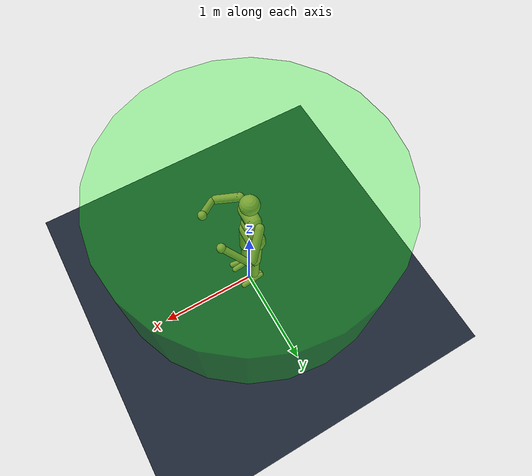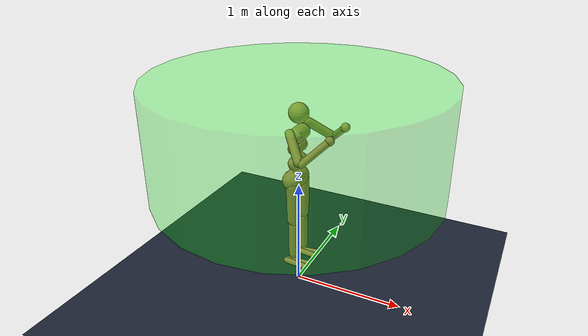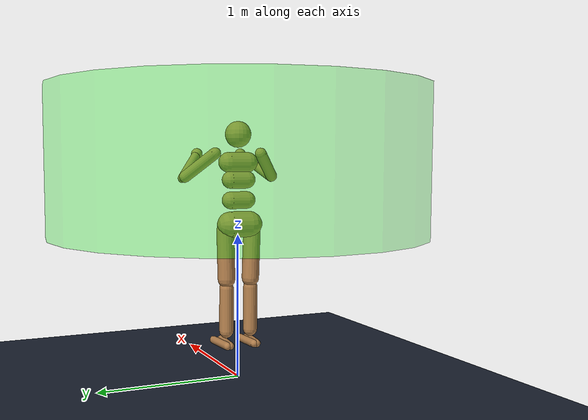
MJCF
<mujoco model="humanoid">
    <asset>
        <texture name="grid" type="2d" builtin="checker" rgb1=".08 .11 .16" rgb2=".15 .18 .25" width="300" height="300"/>
        <material name="grid" texture="grid" texrepeat="1 1" texuniform="true"/>
        <material name="self" rgba=".7 .5 .3 1"/>
        <material name="self_default" rgba=".7 .5 .3 1"/>
        <material name="self_highlight" rgba="0 .5 .3 1"/>
        <material name="self_white" rgba=".8 .8 .8 1"/>
        <material name="effector" rgba=".7 .4 .2 1"/>
        <material name="effector_default" rgba=".7 .4 .2 1"/>
        <material name="effector_highlight" rgba="0 .5 .3 1"/>
        <material name="decoration" rgba=".3 .5 .7 1"/>
        <material name="eye" rgba="0 .2 1 1"/>
        <material name="target" rgba="0.96 0.26 0.33 1"/>
        <material name="subgoal_waypnt" rgba="1.0 0.35 0.11 1"/>
        <material name="site" rgba=".5 .5 .5 .3"/>
        <material name="wall" rgba="1 1 1 1"/>

        <material name="matte_material"
          rgba="1.0 0.35 0.11 1"
          specular="0.0"
          shininess="0.0"
          reflectance="0.0"
          emission="0.0" />    <!-- Feb 24, usually 0 unless you want the geom to glow -->

    </asset>

    <option timestep=".005"/>

    <default>
        <motor ctrlrange="-1 1" ctrllimited="true"/>
        <default class="body">
            <geom type="capsule" condim="1" friction=".7" solimp=".9 .99 .003" solref=".015 1" material="self"/>
            <joint type="hinge" damping=".2" stiffness="1" armature=".01" limited="true" solimplimit="0 .99 .01"/>
            <default class="big_joint">
                <joint damping="5" stiffness="10"/>
                <default class="big_stiff_joint">
                    <joint stiffness="20"/>
                </default>
            </default>
            <site size=".04" group="3"/>
            <default class="force-torque">
                <site type="box" size=".01 .01 .02" rgba="1 0 0 1"/>
            </default>
            <default class="touch">
                <site type="capsule" rgba="0 0 1 .3"/>
            </default>
        </default>
    </default>

    <worldbody>
        <light name="global" directional="true" cutoff="100" exponent="1" ambient=".2 .2 .2" diffuse="1 1 1" specular=".1 .1 .1" pos="0 0 1.3" dir="-0 0 -1.3"/>
        <geom name="floor" type="plane" conaffinity="1" size="100 100 .2" material="grid"/>
        <body name="torso" pos="0 0 1.5" childclass="body">
        <!-- Jan 1 Added for visualization -->
            <!-- size="2.0 1.0" -->
            <!-- rgba="0 1 0 0.4" -->
            <!-- pos="0 0 1" -->
            <geom
            name="visual_circle"
            type="cylinder"
            size="1.3 0.5"
            pos="0 0 0."
            rgba="0 1 0 0.3"
            contype="0"
            conaffinity="0"
            density="0"/>

            <camera name="back" pos="0 -0.6 1.25" xyaxes="1 0 0 0 2.5 1" mode="trackcom"/>
            <camera name="back_luo_v1" pos="0 -2.4 5" xyaxes="1 0 0 0 2 1" mode="trackcom"/>
            <camera name="back_luo_v2" pos="0 -3.6 7.5" xyaxes="1 0 0 0 2 1" mode="trackcom"/>
            <camera name="back_luo_v3" pos="0 -4.8 10" xyaxes="1 0 0 0 2 1" mode="trackcom"/>

            <freejoint name="root"/>
            <site name="root" class="force-torque"/>
            <geom name="torso" fromto="0 -.07 0 0 .07 0" size=".07"/>
            <light name="torso_light" pos="0 0 8" mode="trackcom"/>
            <geom name="upper_waist" fromto="-.01 -.06 -.12 -.01 .06 -.12" size=".06"/>
            <site name="torso" class="touch" type="box" pos="0 0 -.05" size=".075 .14 .13"/>
            <body name="head" pos="0 0 .19">
                <geom name="head" type="sphere" size=".09"/>
                <site name="head" class="touch" type="sphere" size=".091"/>
                <camera name="egocentric" pos=".09 0 0" xyaxes="0 -1 0 .1 0 1" fovy="80"/>
            </body>
            <body name="lower_waist" pos="-.01 0 -.260" quat="1.000 0 -.002 0">
                <geom name="lower_waist" fromto="0 -.06 0 0 .06 0" size=".06"/>
                <site name="lower_waist" class="touch" size=".061 .06" zaxis="0 1 0"/>
                <joint name="abdomen_z" pos="0 0 .065" axis="0 0 1" range="-45 45" class="big_stiff_joint"/>
                <joint name="abdomen_y" pos="0 0 .065" axis="0 1 0" range="-75 30" class="big_joint"/>
                <body name="pelvis" pos="0 0 -.165" quat="1.000 0 -.002 0">
                    <joint name="abdomen_x" pos="0 0 .1" axis="1 0 0" range="-35 35" class="big_joint"/>
                    <geom name="butt" fromto="-.02 -.07 0 -.02 .07 0" size=".09"/>
                    <site name="butt" class="touch" size=".091 .07" pos="-.02 0 0" zaxis="0 1 0"/>
                    <body name="right_thigh" pos="0 -.1 -.04">
                        <site name="right_hip" class="force-torque"/>
                        <joint name="right_hip_x" axis="1 0 0" range="-25 5" class="big_joint"/>
                        <joint name="right_hip_z" axis="0 0 1" range="-60 35" class="big_joint"/>
                        <joint name="right_hip_y" axis="0 1 0" range="-110 20" class="big_stiff_joint"/>
                        <geom name="right_thigh" fromto="0 0 0 0 .01 -.34" size=".06"/>
                        <site name="right_thigh" class="touch" pos="0 .005 -.17" size=".061 .17" zaxis="0 -1 34"/>
                        <body name="right_shin" pos="0 .01 -.403">
                            <site name="right_knee" class="force-torque" pos="0 0 .02"/>
                            <joint name="right_knee" pos="0 0 .02" axis="0 -1 0" range="-160 2"/>
                            <geom name="right_shin" fromto="0 0 0 0 0 -.3" size=".049"/>
                            <site name="right_shin" class="touch" pos="0 0 -.15" size=".05 .15"/>
                            <body name="right_foot" pos="0 0 -.39">
                                <site name="right_ankle" class="force-torque"/>
                                <joint name="right_ankle_y" pos="0 0 .08" axis="0 1 0" range="-50 50" stiffness="6"/>
                                <joint name="right_ankle_x" pos="0 0 .04" axis="1 0 .5" range="-50 50" stiffness="3"/>
                                <geom name="right_right_foot" fromto="-.07 -.02 0 .14 -.04 0" size=".027"/>
                                <geom name="left_right_foot" fromto="-.07 0 0 .14  .02 0" size=".027"/>
                                <site name="right_right_foot" class="touch" pos=".035 -.03 0" size=".03 .11" zaxis="21 -2 0"/>
                                <site name="left_right_foot" class="touch" pos=".035 .01 0" size=".03 .11" zaxis="21 2 0"/>
                            </body>
                        </body>
                    </body>
                    <body name="left_thigh" pos="0 .1 -.04">
                        <site name="left_hip" class="force-torque"/>
                        <joint name="left_hip_x" axis="-1 0 0" range="-25 5" class="big_joint"/>
                        <joint name="left_hip_z" axis="0 0 -1" range="-60 35" class="big_joint"/>
                        <joint name="left_hip_y" axis="0 1 0" range="-120 20" class="big_stiff_joint"/>
                        <geom name="left_thigh" fromto="0 0 0 0 -.01 -.34" size=".06"/>
                        <site name="left_thigh" class="touch" pos="0 -.005 -.17" size=".061 .17" zaxis="0 1 34"/>
                        <body name="left_shin" pos="0 -.01 -.403">
                            <site name="left_knee" class="force-torque" pos="0 0 .02"/>
                            <joint name="left_knee" pos="0 0 .02" axis="0 -1 0" range="-160 2"/>
                            <geom name="left_shin" fromto="0 0 0 0 0 -.3" size=".049"/>
                            <site name="left_shin" class="touch" pos="0 0 -.15" size=".05 .15"/>
                            <body name="left_foot" pos="0 0 -.39">
                                <site name="left_ankle" class="force-torque"/>
                                <joint name="left_ankle_y" pos="0 0 .08" axis="0 1 0" range="-50 50" stiffness="6"/>
                                <joint name="left_ankle_x" pos="0 0 .04" axis="1 0 .5" range="-50 50" stiffness="3"/>
                                <geom name="left_left_foot" fromto="-.07 .02 0 .14 .04 0" size=".027"/>
                                <geom name="right_left_foot" fromto="-.07 0 0 .14  -.02 0" size=".027"/>
                                <site name="right_left_foot" class="touch" pos=".035 -.01 0" size=".03 .11" zaxis="21 -2 0"/>
                                <site name="left_left_foot" class="touch" pos=".035 .03 0" size=".03 .11" zaxis="21 2 0"/>

                            </body>
                        </body>
                    </body>
                </body>
            </body>
            <body name="right_upper_arm" pos="0 -.17 .06">
                <joint name="right_shoulder1" axis="2 1 1" range="-85 60"/>
                <joint name="right_shoulder2" axis="0 -1 1" range="-85 60"/>
                <geom name="right_upper_arm" fromto="0 0 0 .16 -.16 -.16" size=".04 .16"/>
                <site name="right_upper_arm" class="touch" pos=".08 -.08 -.08" size=".041 .14" zaxis="1 -1 -1"/>
                <body name="right_lower_arm" pos=".18 -.18 -.18">
                    <joint name="right_elbow" axis="0 -1 1" range="-90 50" stiffness="0"/>
                    <geom name="right_lower_arm" fromto=".01 .01 .01 .17 .17 .17" size=".031"/>
                    <site name="right_lower_arm" class="touch" pos=".09 .09 .09" size=".032 .14" zaxis="1 1 1"/>
                    <body name="right_hand" pos=".18 .18 .18">
                        <geom name="right_hand" type="sphere" size=".04"/>
                        <site name="right_hand" class="touch" type="sphere" size=".041"/>
                    </body>
                </body>
            </body>
            <body name="left_upper_arm" pos="0 .17 .06">
                <joint name="left_shoulder1" axis="2 -1 1" range="-60 85"/>
                <joint name="left_shoulder2" axis="0 1 1" range="-60 85"/>
                <geom name="left_upper_arm" fromto="0 0 0 .16 .16 -.16" size=".04 .16"/>
                <site name="left_upper_arm" class="touch" pos=".08 .08 -.08" size=".041 .14" zaxis="1 1 -1"/>
                <body name="left_lower_arm" pos=".18 .18 -.18">
                    <joint name="left_elbow" axis="0 -1 -1" range="-90 50" stiffness="0"/>
                    <geom name="left_lower_arm" fromto=".01 -.01 .01 .17 -.17 .17" size=".031"/>
                    <site name="left_lower_arm" class="touch" pos=".09 -.09 .09" size=".032 .14" zaxis="1 -1 1"/>
                    <body name="left_hand" pos=".18 -.18 .18">
                        <geom name="left_hand" type="sphere" size=".04"/>
                        <site name="left_hand" class="touch" type="sphere" size=".041"/>
                    </body>
                </body>
            </body>
        </body>
    </worldbody>

    <actuator>
        <motor name="abdomen_y" gear="40" joint="abdomen_y"/>
        <motor name="abdomen_z" gear="40" joint="abdomen_z"/>
        <motor name="abdomen_x" gear="40" joint="abdomen_x"/>
        <motor name="right_hip_x" gear="40" joint="right_hip_x"/>
        <motor name="right_hip_z" gear="40" joint="right_hip_z"/>
        <motor name="right_hip_y" gear="120" joint="right_hip_y"/>
        <motor name="right_knee" gear="80" joint="right_knee"/>
        <motor name="right_ankle_x" gear="20" joint="right_ankle_x"/>
        <motor name="right_ankle_y" gear="20" joint="right_ankle_y"/>
        <motor name="left_hip_x" gear="40" joint="left_hip_x"/>
        <motor name="left_hip_z" gear="40" joint="left_hip_z"/>
        <motor name="left_hip_y" gear="120" joint="left_hip_y"/>
        <motor name="left_knee" gear="80" joint="left_knee"/>
        <motor name="left_ankle_x" gear="20" joint="left_ankle_x"/>
        <motor name="left_ankle_y" gear="20" joint="left_ankle_y"/>
        <motor name="right_shoulder1" gear="20" joint="right_shoulder1"/>
        <motor name="right_shoulder2" gear="20" joint="right_shoulder2"/>
        <motor name="right_elbow" gear="40" joint="right_elbow"/>
        <motor name="left_shoulder1" gear="20" joint="left_shoulder1"/>
        <motor name="left_shoulder2" gear="20" joint="left_shoulder2"/>
        <motor name="left_elbow" gear="40" joint="left_elbow"/>
    </actuator>

    <sensor>
        <subtreelinvel name="torso_subtreelinvel" body="torso"/>
        <accelerometer name="torso_accel" site="root"/>
        <velocimeter name="torso_vel" site="root"/>
        <gyro name="torso_gyro" site="root"/>

        <force name="left_ankle_force" site="left_ankle"/>
        <force name="right_ankle_force" site="right_ankle"/>
        <force name="left_knee_force" site="left_knee"/>
        <force name="right_knee_force" site="right_knee"/>
        <force name="left_hip_force" site="left_hip"/>
        <force name="right_hip_force" site="right_hip"/>

        <torque name="left_ankle_torque" site="left_ankle"/>
        <torque name="right_ankle_torque" site="right_ankle"/>
        <torque name="left_knee_torque" site="left_knee"/>
        <torque name="right_knee_torque" site="right_knee"/>
        <torque name="left_hip_torque" site="left_hip"/>
        <torque name="right_hip_torque" site="right_hip"/>

        <touch name="torso_touch" site="torso"/>
        <touch name="head_touch" site="head"/>
        <touch name="lower_waist_touch" site="lower_waist"/>
        <touch name="butt_touch" site="butt"/>
        <touch name="right_thigh_touch" site="right_thigh"/>
        <touch name="right_shin_touch" site="right_shin"/>
        <touch name="right_right_foot_touch" site="right_right_foot"/>
        <touch name="left_right_foot_touch" site="left_right_foot"/>
        <touch name="left_thigh_touch" site="left_thigh"/>
        <touch name="left_shin_touch" site="left_shin"/>
        <touch name="right_left_foot_touch" site="right_left_foot"/>
        <touch name="left_left_foot_touch" site="left_left_foot"/>
        <touch name="right_upper_arm_touch" site="right_upper_arm"/>
        <touch name="right_lower_arm_touch" site="right_lower_arm"/>
        <touch name="right_hand_touch" site="right_hand"/>
        <touch name="left_upper_arm_touch" site="left_upper_arm"/>
        <touch name="left_lower_arm_touch" site="left_lower_arm"/>
        <touch name="left_hand_touch" site="left_hand"/>
    </sensor>
</mujoco>
